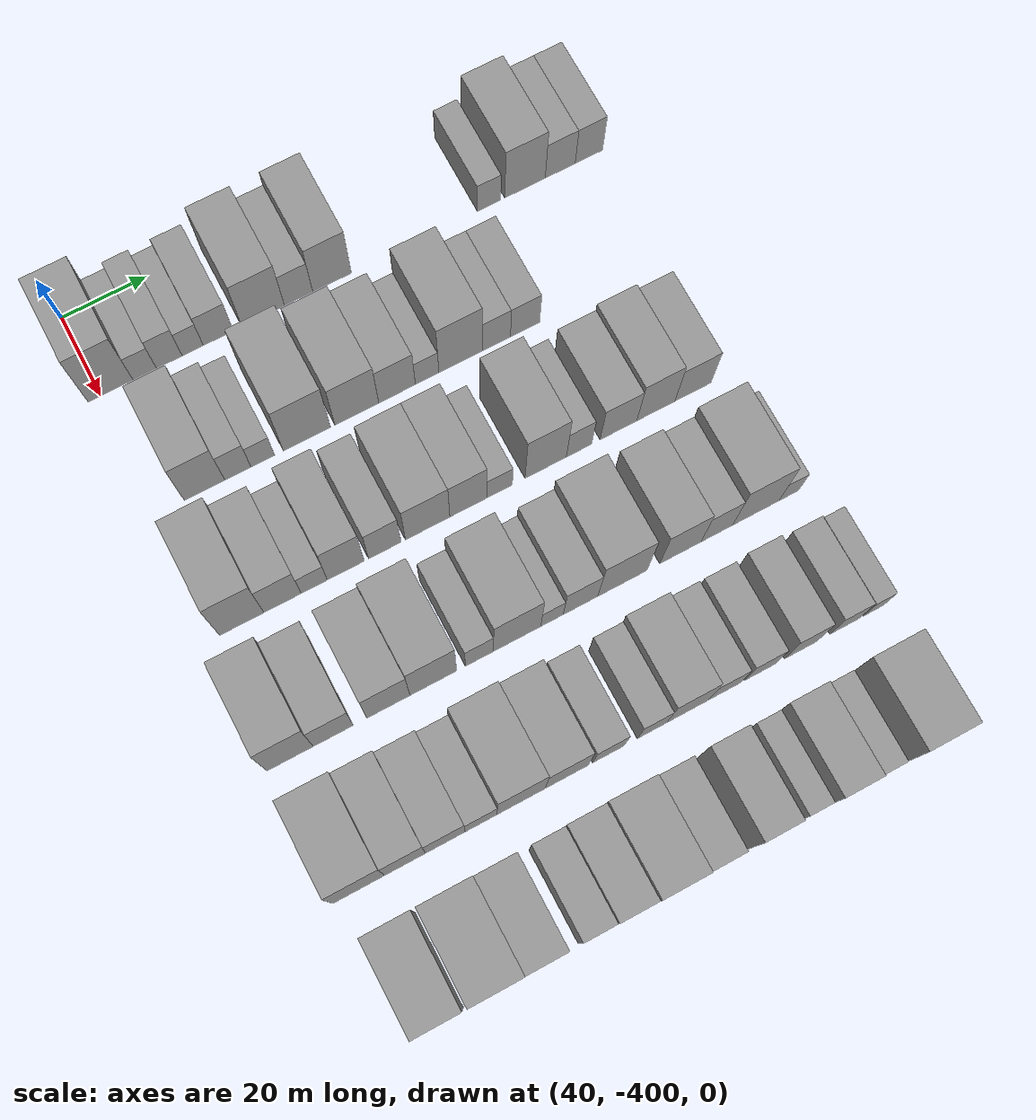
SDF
<sdf version="1.6">
 <world name="default">
  <model name="building_14">
   <static>1</static>
   <pose>50.0000 -397.6285 0 0.000000 0.000000 0.000000</pose>
   <link name="link">
    <pose>0 0 12.00 0 0 0</pose>
    <collision name="collision"><geometry><box><size>20.0000 10.4300 24.0000</size></box></geometry></collision>
    <visual name="visual">
     <cast_shadows>0</cast_shadows>
     <geometry><box><size>20.0000 10.4300 24.0000</size></box></geometry>
     <material>
      <script>
       <uri>model://grey_wall/materials/scripts</uri>
       <uri>model://grey_wall/materials/textures</uri>
       <name>vrc/grey_wall</name>
      </script>
     </material>
    </visual>
   </link>
  </model>
  <model name="building_15">
   <static>1</static>
   <pose>50.0000 -389.6784 0 0.000000 0.000000 0.000000</pose>
   <link name="link">
    <pose>0 0 6.00 0 0 0</pose>
    <collision name="collision"><geometry><box><size>20.0000 5.4701 12.0000</size></box></geometry></collision>
    <visual name="visual">
     <cast_shadows>0</cast_shadows>
     <geometry><box><size>20.0000 5.4701 12.0000</size></box></geometry>
     <material>
      <script>
       <uri>model://grey_wall/materials/scripts</uri>
       <uri>model://grey_wall/materials/textures</uri>
       <name>vrc/grey_wall</name>
      </script>
     </material>
    </visual>
   </link>
  </model>
  <model name="building_16">
   <static>1</static>
   <pose>50.0000 -383.9326 0 0.000000 0.000000 0.000000</pose>
   <link name="link">
    <pose>0 0 7.50 0 0 0</pose>
    <collision name="collision"><geometry><box><size>20.0000 6.0216 15.0000</size></box></geometry></collision>
    <visual name="visual">
     <cast_shadows>0</cast_shadows>
     <geometry><box><size>20.0000 6.0216 15.0000</size></box></geometry>
     <material>
      <script>
       <uri>model://grey_wall/materials/scripts</uri>
       <uri>model://grey_wall/materials/textures</uri>
       <name>vrc/grey_wall</name>
      </script>
     </material>
    </visual>
   </link>
  </model>
  <model name="building_17">
   <static>1</static>
   <pose>50.0000 -378.4423 0 0.000000 0.000000 0.000000</pose>
   <link name="link">
    <pose>0 0 6.00 0 0 0</pose>
    <collision name="collision"><geometry><box><size>20.0000 4.9590 12.0000</size></box></geometry></collision>
    <visual name="visual">
     <cast_shadows>0</cast_shadows>
     <geometry><box><size>20.0000 4.9590 12.0000</size></box></geometry>
     <material>
      <script>
       <uri>model://grey_wall/materials/scripts</uri>
       <uri>model://grey_wall/materials/textures</uri>
       <name>vrc/grey_wall</name>
      </script>
     </material>
    </visual>
   </link>
  </model>
  <model name="building_18">
   <static>1</static>
   <pose>50.0000 -372.4186 0 0.000000 0.000000 0.000000</pose>
   <link name="link">
    <pose>0 0 7.50 0 0 0</pose>
    <collision name="collision"><geometry><box><size>20.0000 7.0884 15.0000</size></box></geometry></collision>
    <visual name="visual">
     <cast_shadows>0</cast_shadows>
     <geometry><box><size>20.0000 7.0884 15.0000</size></box></geometry>
     <material>
      <script>
       <uri>model://grey_wall/materials/scripts</uri>
       <uri>model://grey_wall/materials/textures</uri>
       <name>vrc/grey_wall</name>
      </script>
     </material>
    </visual>
   </link>
  </model>
  <model name="building_19">
   <static>1</static>
   <pose>50.0000 -361.8042 0 0.000000 0.000000 0.000000</pose>
   <link name="link">
    <pose>0 0 10.50 0 0 0</pose>
    <collision name="collision"><geometry><box><size>20.0000 10.1404 21.0000</size></box></geometry></collision>
    <visual name="visual">
     <cast_shadows>0</cast_shadows>
     <geometry><box><size>20.0000 10.1404 21.0000</size></box></geometry>
     <material>
      <script>
       <uri>model://grey_wall/materials/scripts</uri>
       <uri>model://grey_wall/materials/textures</uri>
       <name>vrc/grey_wall</name>
      </script>
     </material>
    </visual>
   </link>
  </model>
  <model name="building_20">
   <static>1</static>
   <pose>50.0000 -353.3539 0 0.000000 0.000000 0.000000</pose>
   <link name="link">
    <pose>0 0 7.50 0 0 0</pose>
    <collision name="collision"><geometry><box><size>20.0000 6.7602 15.0000</size></box></geometry></collision>
    <visual name="visual">
     <cast_shadows>0</cast_shadows>
     <geometry><box><size>20.0000 6.7602 15.0000</size></box></geometry>
     <material>
      <script>
       <uri>model://grey_wall/materials/scripts</uri>
       <uri>model://grey_wall/materials/textures</uri>
       <name>vrc/grey_wall</name>
      </script>
     </material>
    </visual>
   </link>
  </model>
  <model name="building_21">
   <static>1</static>
   <pose>50.0000 -345.3491 0 0.000000 0.000000 0.000000</pose>
   <link name="link">
    <pose>0 0 10.50 0 0 0</pose>
    <collision name="collision"><geometry><box><size>20.0000 9.2494 21.0000</size></box></geometry></collision>
    <visual name="visual">
     <cast_shadows>0</cast_shadows>
     <geometry><box><size>20.0000 9.2494 21.0000</size></box></geometry>
     <material>
      <script>
       <uri>model://grey_wall/materials/scripts</uri>
       <uri>model://grey_wall/materials/textures</uri>
       <name>vrc/grey_wall</name>
      </script>
     </material>
    </visual>
   </link>
  </model>
  <model name="building_22">
   <static>1</static>
   <pose>50.0000 -307.1220 0 0.000000 0.000000 0.000000</pose>
   <link name="link">
    <pose>0 0 6.00 0 0 0</pose>
    <collision name="collision"><geometry><box><size>20.0000 5.7349 12.0000</size></box></geometry></collision>
    <visual name="visual">
     <cast_shadows>0</cast_shadows>
     <geometry><box><size>20.0000 5.7349 12.0000</size></box></geometry>
     <material>
      <script>
       <uri>model://grey_wall/materials/scripts</uri>
       <uri>model://grey_wall/materials/textures</uri>
       <name>vrc/grey_wall</name>
      </script>
     </material>
    </visual>
   </link>
  </model>
  <model name="building_23">
   <static>1</static>
   <pose>50.0000 -298.2257 0 0.000000 0.000000 0.000000</pose>
   <link name="link">
    <pose>0 0 10.50 0 0 0</pose>
    <collision name="collision"><geometry><box><size>20.0000 10.0577 21.0000</size></box></geometry></collision>
    <visual name="visual">
     <cast_shadows>0</cast_shadows>
     <geometry><box><size>20.0000 10.0577 21.0000</size></box></geometry>
     <material>
      <script>
       <uri>model://grey_wall/materials/scripts</uri>
       <uri>model://grey_wall/materials/textures</uri>
       <name>vrc/grey_wall</name>
      </script>
     </material>
    </visual>
   </link>
  </model>
  <model name="building_24">
   <static>1</static>
   <pose>50.0000 -289.4588 0 0.000000 0.000000 0.000000</pose>
   <link name="link">
    <pose>0 0 7.50 0 0 0</pose>
    <collision name="collision"><geometry><box><size>20.0000 7.4761 15.0000</size></box></geometry></collision>
    <visual name="visual">
     <cast_shadows>0</cast_shadows>
     <geometry><box><size>20.0000 7.4761 15.0000</size></box></geometry>
     <material>
      <script>
       <uri>model://grey_wall/materials/scripts</uri>
       <uri>model://grey_wall/materials/textures</uri>
       <name>vrc/grey_wall</name>
      </script>
     </material>
    </visual>
   </link>
  </model>
  <model name="building_25">
   <static>1</static>
   <pose>50.0000 -282.2839 0 0.000000 0.000000 0.000000</pose>
   <link name="link">
    <pose>0 0 7.50 0 0 0</pose>
    <collision name="collision"><geometry><box><size>20.0000 6.8737 15.0000</size></box></geometry></collision>
    <visual name="visual">
     <cast_shadows>0</cast_shadows>
     <geometry><box><size>20.0000 6.8737 15.0000</size></box></geometry>
     <material>
      <script>
       <uri>model://grey_wall/materials/scripts</uri>
       <uri>model://grey_wall/materials/textures</uri>
       <name>vrc/grey_wall</name>
      </script>
     </material>
    </visual>
   </link>
  </model>
  <model name="building_127">
   <static>1</static>
   <pose>79.0000 -389.4986 0 0.000000 0.000000 0.000000</pose>
   <link name="link">
    <pose>0 0 10.50 0 0 0</pose>
    <collision name="collision"><geometry><box><size>20.0000 9.3005 21.0000</size></box></geometry></collision>
    <visual name="visual">
     <cast_shadows>0</cast_shadows>
     <geometry><box><size>20.0000 9.3005 21.0000</size></box></geometry>
     <material>
      <script>
       <uri>model://grey_wall/materials/scripts</uri>
       <uri>model://grey_wall/materials/textures</uri>
       <name>vrc/grey_wall</name>
      </script>
     </material>
    </visual>
   </link>
  </model>
  <model name="building_128">
   <static>1</static>
   <pose>79.0000 -381.8173 0 0.000000 0.000000 0.000000</pose>
   <link name="link">
    <pose>0 0 7.50 0 0 0</pose>
    <collision name="collision"><geometry><box><size>20.0000 6.0622 15.0000</size></box></geometry></collision>
    <visual name="visual">
     <cast_shadows>0</cast_shadows>
     <geometry><box><size>20.0000 6.0622 15.0000</size></box></geometry>
     <material>
      <script>
       <uri>model://grey_wall/materials/scripts</uri>
       <uri>model://grey_wall/materials/textures</uri>
       <name>vrc/grey_wall</name>
      </script>
     </material>
    </visual>
   </link>
  </model>
  <model name="building_129">
   <static>1</static>
   <pose>79.0000 -376.0489 0 0.000000 0.000000 0.000000</pose>
   <link name="link">
    <pose>0 0 6.00 0 0 0</pose>
    <collision name="collision"><geometry><box><size>20.0000 5.4746 12.0000</size></box></geometry></collision>
    <visual name="visual">
     <cast_shadows>0</cast_shadows>
     <geometry><box><size>20.0000 5.4746 12.0000</size></box></geometry>
     <material>
      <script>
       <uri>model://grey_wall/materials/scripts</uri>
       <uri>model://grey_wall/materials/textures</uri>
       <name>vrc/grey_wall</name>
      </script>
     </material>
    </visual>
   </link>
  </model>
  <model name="building_130">
   <static>1</static>
   <pose>79.0000 -365.7955 0 0.000000 0.000000 0.000000</pose>
   <link name="link">
    <pose>0 0 12.00 0 0 0</pose>
    <collision name="collision"><geometry><box><size>20.0000 11.0322 24.0000</size></box></geometry></collision>
    <visual name="visual">
     <cast_shadows>0</cast_shadows>
     <geometry><box><size>20.0000 11.0322 24.0000</size></box></geometry>
     <material>
      <script>
       <uri>model://grey_wall/materials/scripts</uri>
       <uri>model://grey_wall/materials/textures</uri>
       <name>vrc/grey_wall</name>
      </script>
     </material>
    </visual>
   </link>
  </model>
  <model name="building_131">
   <static>1</static>
   <pose>79.0000 -354.1145 0 0.000000 0.000000 0.000000</pose>
   <link name="link">
    <pose>0 0 10.50 0 0 0</pose>
    <collision name="collision"><geometry><box><size>20.0000 10.3298 21.0000</size></box></geometry></collision>
    <visual name="visual">
     <cast_shadows>0</cast_shadows>
     <geometry><box><size>20.0000 10.3298 21.0000</size></box></geometry>
     <material>
      <script>
       <uri>model://grey_wall/materials/scripts</uri>
       <uri>model://grey_wall/materials/textures</uri>
       <name>vrc/grey_wall</name>
      </script>
     </material>
    </visual>
   </link>
  </model>
  <model name="building_132">
   <static>1</static>
   <pose>79.0000 -344.5985 0 0.000000 0.000000 0.000000</pose>
   <link name="link">
    <pose>0 0 9.00 0 0 0</pose>
    <collision name="collision"><geometry><box><size>20.0000 8.7021 18.0000</size></box></geometry></collision>
    <visual name="visual">
     <cast_shadows>0</cast_shadows>
     <geometry><box><size>20.0000 8.7021 18.0000</size></box></geometry>
     <material>
      <script>
       <uri>model://grey_wall/materials/scripts</uri>
       <uri>model://grey_wall/materials/textures</uri>
       <name>vrc/grey_wall</name>
      </script>
     </material>
    </visual>
   </link>
  </model>
  <model name="building_133">
   <static>1</static>
   <pose>79.0000 -337.4451 0 0.000000 0.000000 0.000000</pose>
   <link name="link">
    <pose>0 0 6.00 0 0 0</pose>
    <collision name="collision"><geometry><box><size>20.0000 5.6048 12.0000</size></box></geometry></collision>
    <visual name="visual">
     <cast_shadows>0</cast_shadows>
     <geometry><box><size>20.0000 5.6048 12.0000</size></box></geometry>
     <material>
      <script>
       <uri>model://grey_wall/materials/scripts</uri>
       <uri>model://grey_wall/materials/textures</uri>
       <name>vrc/grey_wall</name>
      </script>
     </material>
    </visual>
   </link>
  </model>
  <model name="building_134">
   <static>1</static>
   <pose>79.0000 -329.4252 0 0.000000 0.000000 0.000000</pose>
   <link name="link">
    <pose>0 0 12.00 0 0 0</pose>
    <collision name="collision"><geometry><box><size>20.0000 10.4351 24.0000</size></box></geometry></collision>
    <visual name="visual">
     <cast_shadows>0</cast_shadows>
     <geometry><box><size>20.0000 10.4351 24.0000</size></box></geometry>
     <material>
      <script>
       <uri>model://grey_wall/materials/scripts</uri>
       <uri>model://grey_wall/materials/textures</uri>
       <name>vrc/grey_wall</name>
      </script>
     </material>
    </visual>
   </link>
  </model>
  <model name="building_135">
   <static>1</static>
   <pose>79.0000 -320.8374 0 0.000000 0.000000 0.000000</pose>
   <link name="link">
    <pose>0 0 7.50 0 0 0</pose>
    <collision name="collision"><geometry><box><size>20.0000 6.7405 15.0000</size></box></geometry></collision>
    <visual name="visual">
     <cast_shadows>0</cast_shadows>
     <geometry><box><size>20.0000 6.7405 15.0000</size></box></geometry>
     <material>
      <script>
       <uri>model://grey_wall/materials/scripts</uri>
       <uri>model://grey_wall/materials/textures</uri>
       <name>vrc/grey_wall</name>
      </script>
     </material>
    </visual>
   </link>
  </model>
  <model name="building_136">
   <static>1</static>
   <pose>79.0000 -313.9350 0 0.000000 0.000000 0.000000</pose>
   <link name="link">
    <pose>0 0 7.50 0 0 0</pose>
    <collision name="collision"><geometry><box><size>20.0000 7.0644 15.0000</size></box></geometry></collision>
    <visual name="visual">
     <cast_shadows>0</cast_shadows>
     <geometry><box><size>20.0000 7.0644 15.0000</size></box></geometry>
     <material>
      <script>
       <uri>model://grey_wall/materials/scripts</uri>
       <uri>model://grey_wall/materials/textures</uri>
       <name>vrc/grey_wall</name>
      </script>
     </material>
    </visual>
   </link>
  </model>
  <model name="building_242">
   <static>1</static>
   <pose>108.0000 -394.9844 0 0.000000 0.000000 0.000000</pose>
   <link name="link">
    <pose>0 0 12.00 0 0 0</pose>
    <collision name="collision"><geometry><box><size>20.0000 10.0059 24.0000</size></box></geometry></collision>
    <visual name="visual">
     <cast_shadows>0</cast_shadows>
     <geometry><box><size>20.0000 10.0059 24.0000</size></box></geometry>
     <material>
      <script>
       <uri>model://grey_wall/materials/scripts</uri>
       <uri>model://grey_wall/materials/textures</uri>
       <name>vrc/grey_wall</name>
      </script>
     </material>
    </visual>
   </link>
  </model>
  <model name="building_243">
   <static>1</static>
   <pose>108.0000 -385.7614 0 0.000000 0.000000 0.000000</pose>
   <link name="link">
    <pose>0 0 9.00 0 0 0</pose>
    <collision name="collision"><geometry><box><size>20.0000 8.4400 18.0000</size></box></geometry></collision>
    <visual name="visual">
     <cast_shadows>0</cast_shadows>
     <geometry><box><size>20.0000 8.4400 18.0000</size></box></geometry>
     <material>
      <script>
       <uri>model://grey_wall/materials/scripts</uri>
       <uri>model://grey_wall/materials/textures</uri>
       <name>vrc/grey_wall</name>
      </script>
     </material>
    </visual>
   </link>
  </model>
  <model name="building_244">
   <static>1</static>
   <pose>108.0000 -378.5635 0 0.000000 0.000000 0.000000</pose>
   <link name="link">
    <pose>0 0 6.00 0 0 0</pose>
    <collision name="collision"><geometry><box><size>20.0000 5.9558 12.0000</size></box></geometry></collision>
    <visual name="visual">
     <cast_shadows>0</cast_shadows>
     <geometry><box><size>20.0000 5.9558 12.0000</size></box></geometry>
     <material>
      <script>
       <uri>model://grey_wall/materials/scripts</uri>
       <uri>model://grey_wall/materials/textures</uri>
       <name>vrc/grey_wall</name>
      </script>
     </material>
    </visual>
   </link>
  </model>
  <model name="building_245">
   <static>1</static>
   <pose>108.0000 -371.3478 0 0.000000 0.000000 0.000000</pose>
   <link name="link">
    <pose>0 0 10.50 0 0 0</pose>
    <collision name="collision"><geometry><box><size>20.0000 8.4756 21.0000</size></box></geometry></collision>
    <visual name="visual">
     <cast_shadows>0</cast_shadows>
     <geometry><box><size>20.0000 8.4756 21.0000</size></box></geometry>
     <material>
      <script>
       <uri>model://grey_wall/materials/scripts</uri>
       <uri>model://grey_wall/materials/textures</uri>
       <name>vrc/grey_wall</name>
      </script>
     </material>
    </visual>
   </link>
  </model>
  <model name="building_246">
   <static>1</static>
   <pose>108.0000 -362.3578 0 0.000000 0.000000 0.000000</pose>
   <link name="link">
    <pose>0 0 9.00 0 0 0</pose>
    <collision name="collision"><geometry><box><size>20.0000 7.5045 18.0000</size></box></geometry></collision>
    <visual name="visual">
     <cast_shadows>0</cast_shadows>
     <geometry><box><size>20.0000 7.5045 18.0000</size></box></geometry>
     <material>
      <script>
       <uri>model://grey_wall/materials/scripts</uri>
       <uri>model://grey_wall/materials/textures</uri>
       <name>vrc/grey_wall</name>
      </script>
     </material>
    </visual>
   </link>
  </model>
  <model name="building_247">
   <static>1</static>
   <pose>108.0000 -352.4437 0 0.000000 0.000000 0.000000</pose>
   <link name="link">
    <pose>0 0 10.50 0 0 0</pose>
    <collision name="collision"><geometry><box><size>20.0000 10.3237 21.0000</size></box></geometry></collision>
    <visual name="visual">
     <cast_shadows>0</cast_shadows>
     <geometry><box><size>20.0000 10.3237 21.0000</size></box></geometry>
     <material>
      <script>
       <uri>model://grey_wall/materials/scripts</uri>
       <uri>model://grey_wall/materials/textures</uri>
       <name>vrc/grey_wall</name>
      </script>
     </material>
    </visual>
   </link>
  </model>
  <model name="building_248">
   <static>1</static>
   <pose>108.0000 -342.9210 0 0.000000 0.000000 0.000000</pose>
   <link name="link">
    <pose>0 0 10.50 0 0 0</pose>
    <collision name="collision"><geometry><box><size>20.0000 8.7217 21.0000</size></box></geometry></collision>
    <visual name="visual">
     <cast_shadows>0</cast_shadows>
     <geometry><box><size>20.0000 8.7217 21.0000</size></box></geometry>
     <material>
      <script>
       <uri>model://grey_wall/materials/scripts</uri>
       <uri>model://grey_wall/materials/textures</uri>
       <name>vrc/grey_wall</name>
      </script>
     </material>
    </visual>
   </link>
  </model>
  <model name="building_249">
   <static>1</static>
   <pose>108.0000 -335.6010 0 0.000000 0.000000 0.000000</pose>
   <link name="link">
    <pose>0 0 6.00 0 0 0</pose>
    <collision name="collision"><geometry><box><size>20.0000 5.9183 12.0000</size></box></geometry></collision>
    <visual name="visual">
     <cast_shadows>0</cast_shadows>
     <geometry><box><size>20.0000 5.9183 12.0000</size></box></geometry>
     <material>
      <script>
       <uri>model://grey_wall/materials/scripts</uri>
       <uri>model://grey_wall/materials/textures</uri>
       <name>vrc/grey_wall</name>
      </script>
     </material>
    </visual>
   </link>
  </model>
  <model name="building_250">
   <static>1</static>
   <pose>108.0000 -324.7486 0 0.000000 0.000000 0.000000</pose>
   <link name="link">
    <pose>0 0 12.00 0 0 0</pose>
    <collision name="collision"><geometry><box><size>20.0000 9.7865 24.0000</size></box></geometry></collision>
    <visual name="visual">
     <cast_shadows>0</cast_shadows>
     <geometry><box><size>20.0000 9.7865 24.0000</size></box></geometry>
     <material>
      <script>
       <uri>model://grey_wall/materials/scripts</uri>
       <uri>model://grey_wall/materials/textures</uri>
       <name>vrc/grey_wall</name>
      </script>
     </material>
    </visual>
   </link>
  </model>
  <model name="building_251">
   <static>1</static>
   <pose>108.0000 -316.8210 0 0.000000 0.000000 0.000000</pose>
   <link name="link">
    <pose>0 0 7.50 0 0 0</pose>
    <collision name="collision"><geometry><box><size>20.0000 6.0687 15.0000</size></box></geometry></collision>
    <visual name="visual">
     <cast_shadows>0</cast_shadows>
     <geometry><box><size>20.0000 6.0687 15.0000</size></box></geometry>
     <material>
      <script>
       <uri>model://grey_wall/materials/scripts</uri>
       <uri>model://grey_wall/materials/textures</uri>
       <name>vrc/grey_wall</name>
      </script>
     </material>
    </visual>
   </link>
  </model>
  <model name="building_252">
   <static>1</static>
   <pose>108.0000 -307.3789 0 0.000000 0.000000 0.000000</pose>
   <link name="link">
    <pose>0 0 9.00 0 0 0</pose>
    <collision name="collision"><geometry><box><size>20.0000 8.8155 18.0000</size></box></geometry></collision>
    <visual name="visual">
     <cast_shadows>0</cast_shadows>
     <geometry><box><size>20.0000 8.8155 18.0000</size></box></geometry>
     <material>
      <script>
       <uri>model://grey_wall/materials/scripts</uri>
       <uri>model://grey_wall/materials/textures</uri>
       <name>vrc/grey_wall</name>
      </script>
     </material>
    </visual>
   </link>
  </model>
  <model name="building_253">
   <static>1</static>
   <pose>108.0000 -298.3660 0 0.000000 0.000000 0.000000</pose>
   <link name="link">
    <pose>0 0 10.50 0 0 0</pose>
    <collision name="collision"><geometry><box><size>20.0000 9.2102 21.0000</size></box></geometry></collision>
    <visual name="visual">
     <cast_shadows>0</cast_shadows>
     <geometry><box><size>20.0000 9.2102 21.0000</size></box></geometry>
     <material>
      <script>
       <uri>model://grey_wall/materials/scripts</uri>
       <uri>model://grey_wall/materials/textures</uri>
       <name>vrc/grey_wall</name>
      </script>
     </material>
    </visual>
   </link>
  </model>
  <model name="building_254">
   <static>1</static>
   <pose>108.0000 -289.3738 0 0.000000 0.000000 0.000000</pose>
   <link name="link">
    <pose>0 0 9.00 0 0 0</pose>
    <collision name="collision"><geometry><box><size>20.0000 8.7741 18.0000</size></box></geometry></collision>
    <visual name="visual">
     <cast_shadows>0</cast_shadows>
     <geometry><box><size>20.0000 8.7741 18.0000</size></box></geometry>
     <material>
      <script>
       <uri>model://grey_wall/materials/scripts</uri>
       <uri>model://grey_wall/materials/textures</uri>
       <name>vrc/grey_wall</name>
      </script>
     </material>
    </visual>
   </link>
  </model>
  <model name="building_351">
   <static>1</static>
   <pose>137.0000 -398.3621 0 0.000000 0.000000 0.000000</pose>
   <link name="link">
    <pose>0 0 12.00 0 0 0</pose>
    <collision name="collision"><geometry><box><size>20.0000 10.2706 24.0000</size></box></geometry></collision>
    <visual name="visual">
     <cast_shadows>0</cast_shadows>
     <geometry><box><size>20.0000 10.2706 24.0000</size></box></geometry>
     <material>
      <script>
       <uri>model://grey_wall/materials/scripts</uri>
       <uri>model://grey_wall/materials/textures</uri>
       <name>vrc/grey_wall</name>
      </script>
     </material>
    </visual>
   </link>
  </model>
  <model name="building_352">
   <static>1</static>
   <pose>137.0000 -388.7688 0 0.000000 0.000000 0.000000</pose>
   <link name="link">
    <pose>0 0 9.00 0 0 0</pose>
    <collision name="collision"><geometry><box><size>20.0000 8.9160 18.0000</size></box></geometry></collision>
    <visual name="visual">
     <cast_shadows>0</cast_shadows>
     <geometry><box><size>20.0000 8.9160 18.0000</size></box></geometry>
     <material>
      <script>
       <uri>model://grey_wall/materials/scripts</uri>
       <uri>model://grey_wall/materials/textures</uri>
       <name>vrc/grey_wall</name>
      </script>
     </material>
    </visual>
   </link>
  </model>
  <model name="building_353">
   <static>1</static>
   <pose>137.0000 -376.4501 0 0.000000 0.000000 0.000000</pose>
   <link name="link">
    <pose>0 0 10.50 0 0 0</pose>
    <collision name="collision"><geometry><box><size>20.0000 9.7214 21.0000</size></box></geometry></collision>
    <visual name="visual">
     <cast_shadows>0</cast_shadows>
     <geometry><box><size>20.0000 9.7214 21.0000</size></box></geometry>
     <material>
      <script>
       <uri>model://grey_wall/materials/scripts</uri>
       <uri>model://grey_wall/materials/textures</uri>
       <name>vrc/grey_wall</name>
      </script>
     </material>
    </visual>
   </link>
  </model>
  <model name="building_354">
   <static>1</static>
   <pose>137.0000 -366.2980 0 0.000000 0.000000 0.000000</pose>
   <link name="link">
    <pose>0 0 12.00 0 0 0</pose>
    <collision name="collision"><geometry><box><size>20.0000 10.5828 24.0000</size></box></geometry></collision>
    <visual name="visual">
     <cast_shadows>0</cast_shadows>
     <geometry><box><size>20.0000 10.5828 24.0000</size></box></geometry>
     <material>
      <script>
       <uri>model://grey_wall/materials/scripts</uri>
       <uri>model://grey_wall/materials/textures</uri>
       <name>vrc/grey_wall</name>
      </script>
     </material>
    </visual>
   </link>
  </model>
  <model name="building_355">
   <static>1</static>
   <pose>137.0000 -355.8295 0 0.000000 0.000000 0.000000</pose>
   <link name="link">
    <pose>0 0 7.50 0 0 0</pose>
    <collision name="collision"><geometry><box><size>20.0000 6.3542 15.0000</size></box></geometry></collision>
    <visual name="visual">
     <cast_shadows>0</cast_shadows>
     <geometry><box><size>20.0000 6.3542 15.0000</size></box></geometry>
     <material>
      <script>
       <uri>model://grey_wall/materials/scripts</uri>
       <uri>model://grey_wall/materials/textures</uri>
       <name>vrc/grey_wall</name>
      </script>
     </material>
    </visual>
   </link>
  </model>
  <model name="building_356">
   <static>1</static>
   <pose>137.0000 -347.2038 0 0.000000 0.000000 0.000000</pose>
   <link name="link">
    <pose>0 0 12.00 0 0 0</pose>
    <collision name="collision"><geometry><box><size>20.0000 10.8970 24.0000</size></box></geometry></collision>
    <visual name="visual">
     <cast_shadows>0</cast_shadows>
     <geometry><box><size>20.0000 10.8970 24.0000</size></box></geometry>
     <material>
      <script>
       <uri>model://grey_wall/materials/scripts</uri>
       <uri>model://grey_wall/materials/textures</uri>
       <name>vrc/grey_wall</name>
      </script>
     </material>
    </visual>
   </link>
  </model>
  <model name="building_357">
   <static>1</static>
   <pose>137.0000 -339.1524 0 0.000000 0.000000 0.000000</pose>
   <link name="link">
    <pose>0 0 6.00 0 0 0</pose>
    <collision name="collision"><geometry><box><size>20.0000 5.2058 12.0000</size></box></geometry></collision>
    <visual name="visual">
     <cast_shadows>0</cast_shadows>
     <geometry><box><size>20.0000 5.2058 12.0000</size></box></geometry>
     <material>
      <script>
       <uri>model://grey_wall/materials/scripts</uri>
       <uri>model://grey_wall/materials/textures</uri>
       <name>vrc/grey_wall</name>
      </script>
     </material>
    </visual>
   </link>
  </model>
  <model name="building_358">
   <static>1</static>
   <pose>137.0000 -332.5166 0 0.000000 0.000000 0.000000</pose>
   <link name="link">
    <pose>0 0 9.00 0 0 0</pose>
    <collision name="collision"><geometry><box><size>20.0000 8.0657 18.0000</size></box></geometry></collision>
    <visual name="visual">
     <cast_shadows>0</cast_shadows>
     <geometry><box><size>20.0000 8.0657 18.0000</size></box></geometry>
     <material>
      <script>
       <uri>model://grey_wall/materials/scripts</uri>
       <uri>model://grey_wall/materials/textures</uri>
       <name>vrc/grey_wall</name>
      </script>
     </material>
    </visual>
   </link>
  </model>
  <model name="building_359">
   <static>1</static>
   <pose>137.0000 -322.7128 0 0.000000 0.000000 0.000000</pose>
   <link name="link">
    <pose>0 0 12.00 0 0 0</pose>
    <collision name="collision"><geometry><box><size>20.0000 11.5420 24.0000</size></box></geometry></collision>
    <visual name="visual">
     <cast_shadows>0</cast_shadows>
     <geometry><box><size>20.0000 11.5420 24.0000</size></box></geometry>
     <material>
      <script>
       <uri>model://grey_wall/materials/scripts</uri>
       <uri>model://grey_wall/materials/textures</uri>
       <name>vrc/grey_wall</name>
      </script>
     </material>
    </visual>
   </link>
  </model>
  <model name="building_360">
   <static>1</static>
   <pose>137.0000 -309.0720 0 0.000000 0.000000 0.000000</pose>
   <link name="link">
    <pose>0 0 10.50 0 0 0</pose>
    <collision name="collision"><geometry><box><size>20.0000 9.7395 21.0000</size></box></geometry></collision>
    <visual name="visual">
     <cast_shadows>0</cast_shadows>
     <geometry><box><size>20.0000 9.7395 21.0000</size></box></geometry>
     <material>
      <script>
       <uri>model://grey_wall/materials/scripts</uri>
       <uri>model://grey_wall/materials/textures</uri>
       <name>vrc/grey_wall</name>
      </script>
     </material>
    </visual>
   </link>
  </model>
  <model name="building_361">
   <static>1</static>
   <pose>137.0000 -300.4558 0 0.000000 0.000000 0.000000</pose>
   <link name="link">
    <pose>0 0 9.00 0 0 0</pose>
    <collision name="collision"><geometry><box><size>20.0000 7.4928 18.0000</size></box></geometry></collision>
    <visual name="visual">
     <cast_shadows>0</cast_shadows>
     <geometry><box><size>20.0000 7.4928 18.0000</size></box></geometry>
     <material>
      <script>
       <uri>model://grey_wall/materials/scripts</uri>
       <uri>model://grey_wall/materials/textures</uri>
       <name>vrc/grey_wall</name>
      </script>
     </material>
    </visual>
   </link>
  </model>
  <model name="building_362">
   <static>1</static>
   <pose>137.0000 -291.1329 0 0.000000 0.000000 0.000000</pose>
   <link name="link">
    <pose>0 0 12.00 0 0 0</pose>
    <collision name="collision"><geometry><box><size>20.0000 11.1530 24.0000</size></box></geometry></collision>
    <visual name="visual">
     <cast_shadows>0</cast_shadows>
     <geometry><box><size>20.0000 11.1530 24.0000</size></box></geometry>
     <material>
      <script>
       <uri>model://grey_wall/materials/scripts</uri>
       <uri>model://grey_wall/materials/textures</uri>
       <name>vrc/grey_wall</name>
      </script>
     </material>
    </visual>
   </link>
  </model>
  <model name="building_363">
   <static>1</static>
   <pose>137.0000 -283.1540 0 0.000000 0.000000 0.000000</pose>
   <link name="link">
    <pose>0 0 6.00 0 0 0</pose>
    <collision name="collision"><geometry><box><size>20.0000 4.8050 12.0000</size></box></geometry></collision>
    <visual name="visual">
     <cast_shadows>0</cast_shadows>
     <geometry><box><size>20.0000 4.8050 12.0000</size></box></geometry>
     <material>
      <script>
       <uri>model://grey_wall/materials/scripts</uri>
       <uri>model://grey_wall/materials/textures</uri>
       <name>vrc/grey_wall</name>
      </script>
     </material>
    </visual>
   </link>
  </model>
  <model name="building_466">
   <static>1</static>
   <pose>166.0000 -397.7326 0 0.000000 0.000000 0.000000</pose>
   <link name="link">
    <pose>0 0 12.00 0 0 0</pose>
    <collision name="collision"><geometry><box><size>20.0000 11.2969 24.0000</size></box></geometry></collision>
    <visual name="visual">
     <cast_shadows>0</cast_shadows>
     <geometry><box><size>20.0000 11.2969 24.0000</size></box></geometry>
     <material>
      <script>
       <uri>model://grey_wall/materials/scripts</uri>
       <uri>model://grey_wall/materials/textures</uri>
       <name>vrc/grey_wall</name>
      </script>
     </material>
    </visual>
   </link>
  </model>
  <model name="building_467">
   <static>1</static>
   <pose>166.0000 -387.6231 0 0.000000 0.000000 0.000000</pose>
   <link name="link">
    <pose>0 0 10.50 0 0 0</pose>
    <collision name="collision"><geometry><box><size>20.0000 8.9222 21.0000</size></box></geometry></collision>
    <visual name="visual">
     <cast_shadows>0</cast_shadows>
     <geometry><box><size>20.0000 8.9222 21.0000</size></box></geometry>
     <material>
      <script>
       <uri>model://grey_wall/materials/scripts</uri>
       <uri>model://grey_wall/materials/textures</uri>
       <name>vrc/grey_wall</name>
      </script>
     </material>
    </visual>
   </link>
  </model>
  <model name="building_468">
   <static>1</static>
   <pose>166.0000 -378.7931 0 0.000000 0.000000 0.000000</pose>
   <link name="link">
    <pose>0 0 9.00 0 0 0</pose>
    <collision name="collision"><geometry><box><size>20.0000 8.7379 18.0000</size></box></geometry></collision>
    <visual name="visual">
     <cast_shadows>0</cast_shadows>
     <geometry><box><size>20.0000 8.7379 18.0000</size></box></geometry>
     <material>
      <script>
       <uri>model://grey_wall/materials/scripts</uri>
       <uri>model://grey_wall/materials/textures</uri>
       <name>vrc/grey_wall</name>
      </script>
     </material>
    </visual>
   </link>
  </model>
  <model name="building_469">
   <static>1</static>
   <pose>166.0000 -370.8876 0 0.000000 0.000000 0.000000</pose>
   <link name="link">
    <pose>0 0 7.50 0 0 0</pose>
    <collision name="collision"><geometry><box><size>20.0000 7.0731 15.0000</size></box></geometry></collision>
    <visual name="visual">
     <cast_shadows>0</cast_shadows>
     <geometry><box><size>20.0000 7.0731 15.0000</size></box></geometry>
     <material>
      <script>
       <uri>model://grey_wall/materials/scripts</uri>
       <uri>model://grey_wall/materials/textures</uri>
       <name>vrc/grey_wall</name>
      </script>
     </material>
    </visual>
   </link>
  </model>
  <model name="building_470">
   <static>1</static>
   <pose>166.0000 -361.9416 0 0.000000 0.000000 0.000000</pose>
   <link name="link">
    <pose>0 0 12.00 0 0 0</pose>
    <collision name="collision"><geometry><box><size>20.0000 10.8190 24.0000</size></box></geometry></collision>
    <visual name="visual">
     <cast_shadows>0</cast_shadows>
     <geometry><box><size>20.0000 10.8190 24.0000</size></box></geometry>
     <material>
      <script>
       <uri>model://grey_wall/materials/scripts</uri>
       <uri>model://grey_wall/materials/textures</uri>
       <name>vrc/grey_wall</name>
      </script>
     </material>
    </visual>
   </link>
  </model>
  <model name="building_471">
   <static>1</static>
   <pose>166.0000 -351.6394 0 0.000000 0.000000 0.000000</pose>
   <link name="link">
    <pose>0 0 10.50 0 0 0</pose>
    <collision name="collision"><geometry><box><size>20.0000 9.7853 21.0000</size></box></geometry></collision>
    <visual name="visual">
     <cast_shadows>0</cast_shadows>
     <geometry><box><size>20.0000 9.7853 21.0000</size></box></geometry>
     <material>
      <script>
       <uri>model://grey_wall/materials/scripts</uri>
       <uri>model://grey_wall/materials/textures</uri>
       <name>vrc/grey_wall</name>
      </script>
     </material>
    </visual>
   </link>
  </model>
  <model name="building_472">
   <static>1</static>
   <pose>166.0000 -342.1630 0 0.000000 0.000000 0.000000</pose>
   <link name="link">
    <pose>0 0 7.50 0 0 0</pose>
    <collision name="collision"><geometry><box><size>20.0000 7.1676 15.0000</size></box></geometry></collision>
    <visual name="visual">
     <cast_shadows>0</cast_shadows>
     <geometry><box><size>20.0000 7.1676 15.0000</size></box></geometry>
     <material>
      <script>
       <uri>model://grey_wall/materials/scripts</uri>
       <uri>model://grey_wall/materials/textures</uri>
       <name>vrc/grey_wall</name>
      </script>
     </material>
    </visual>
   </link>
  </model>
  <model name="building_473">
   <static>1</static>
   <pose>166.0000 -332.2569 0 0.000000 0.000000 0.000000</pose>
   <link name="link">
    <pose>0 0 7.50 0 0 0</pose>
    <collision name="collision"><geometry><box><size>20.0000 6.6446 15.0000</size></box></geometry></collision>
    <visual name="visual">
     <cast_shadows>0</cast_shadows>
     <geometry><box><size>20.0000 6.6446 15.0000</size></box></geometry>
     <material>
      <script>
       <uri>model://grey_wall/materials/scripts</uri>
       <uri>model://grey_wall/materials/textures</uri>
       <name>vrc/grey_wall</name>
      </script>
     </material>
    </visual>
   </link>
  </model>
  <model name="building_474">
   <static>1</static>
   <pose>166.0000 -324.0570 0 0.000000 0.000000 0.000000</pose>
   <link name="link">
    <pose>0 0 10.50 0 0 0</pose>
    <collision name="collision"><geometry><box><size>20.0000 9.7551 21.0000</size></box></geometry></collision>
    <visual name="visual">
     <cast_shadows>0</cast_shadows>
     <geometry><box><size>20.0000 9.7551 21.0000</size></box></geometry>
     <material>
      <script>
       <uri>model://grey_wall/materials/scripts</uri>
       <uri>model://grey_wall/materials/textures</uri>
       <name>vrc/grey_wall</name>
      </script>
     </material>
    </visual>
   </link>
  </model>
  <model name="building_475">
   <static>1</static>
   <pose>166.0000 -315.4754 0 0.000000 0.000000 0.000000</pose>
   <link name="link">
    <pose>0 0 7.50 0 0 0</pose>
    <collision name="collision"><geometry><box><size>20.0000 7.4081 15.0000</size></box></geometry></collision>
    <visual name="visual">
     <cast_shadows>0</cast_shadows>
     <geometry><box><size>20.0000 7.4081 15.0000</size></box></geometry>
     <material>
      <script>
       <uri>model://grey_wall/materials/scripts</uri>
       <uri>model://grey_wall/materials/textures</uri>
       <name>vrc/grey_wall</name>
      </script>
     </material>
    </visual>
   </link>
  </model>
  <model name="building_476">
   <static>1</static>
   <pose>166.0000 -307.1188 0 0.000000 0.000000 0.000000</pose>
   <link name="link">
    <pose>0 0 7.50 0 0 0</pose>
    <collision name="collision"><geometry><box><size>20.0000 7.3052 15.0000</size></box></geometry></collision>
    <visual name="visual">
     <cast_shadows>0</cast_shadows>
     <geometry><box><size>20.0000 7.3052 15.0000</size></box></geometry>
     <material>
      <script>
       <uri>model://grey_wall/materials/scripts</uri>
       <uri>model://grey_wall/materials/textures</uri>
       <name>vrc/grey_wall</name>
      </script>
     </material>
    </visual>
   </link>
  </model>
  <model name="building_477">
   <static>1</static>
   <pose>166.0000 -297.6002 0 0.000000 0.000000 0.000000</pose>
   <link name="link">
    <pose>0 0 9.00 0 0 0</pose>
    <collision name="collision"><geometry><box><size>20.0000 7.7319 18.0000</size></box></geometry></collision>
    <visual name="visual">
     <cast_shadows>0</cast_shadows>
     <geometry><box><size>20.0000 7.7319 18.0000</size></box></geometry>
     <material>
      <script>
       <uri>model://grey_wall/materials/scripts</uri>
       <uri>model://grey_wall/materials/textures</uri>
       <name>vrc/grey_wall</name>
      </script>
     </material>
    </visual>
   </link>
  </model>
  <model name="building_478">
   <static>1</static>
   <pose>166.0000 -287.2691 0 0.000000 0.000000 0.000000</pose>
   <link name="link">
    <pose>0 0 7.50 0 0 0</pose>
    <collision name="collision"><geometry><box><size>20.0000 6.9304 15.0000</size></box></geometry></collision>
    <visual name="visual">
     <cast_shadows>0</cast_shadows>
     <geometry><box><size>20.0000 6.9304 15.0000</size></box></geometry>
     <material>
      <script>
       <uri>model://grey_wall/materials/scripts</uri>
       <uri>model://grey_wall/materials/textures</uri>
       <name>vrc/grey_wall</name>
      </script>
     </material>
    </visual>
   </link>
  </model>
  <model name="building_479">
   <static>1</static>
   <pose>166.0000 -280.3975 0 0.000000 0.000000 0.000000</pose>
   <link name="link">
    <pose>0 0 6.00 0 0 0</pose>
    <collision name="collision"><geometry><box><size>20.0000 4.8127 12.0000</size></box></geometry></collision>
    <visual name="visual">
     <cast_shadows>0</cast_shadows>
     <geometry><box><size>20.0000 4.8127 12.0000</size></box></geometry>
     <material>
      <script>
       <uri>model://grey_wall/materials/scripts</uri>
       <uri>model://grey_wall/materials/textures</uri>
       <name>vrc/grey_wall</name>
      </script>
     </material>
    </visual>
   </link>
  </model>
  <model name="building_578">
   <static>1</static>
   <pose>195.0000 -395.3873 0 0.000000 0.000000 0.000000</pose>
   <link name="link">
    <pose>0 0 12.00 0 0 0</pose>
    <collision name="collision"><geometry><box><size>20.0000 10.5521 24.0000</size></box></geometry></collision>
    <visual name="visual">
     <cast_shadows>0</cast_shadows>
     <geometry><box><size>20.0000 10.5521 24.0000</size></box></geometry>
     <material>
      <script>
       <uri>model://grey_wall/materials/scripts</uri>
       <uri>model://grey_wall/materials/textures</uri>
       <name>vrc/grey_wall</name>
      </script>
     </material>
    </visual>
   </link>
  </model>
  <model name="building_579">
   <static>1</static>
   <pose>195.0000 -383.2135 0 0.000000 0.000000 0.000000</pose>
   <link name="link">
    <pose>0 0 12.00 0 0 0</pose>
    <collision name="collision"><geometry><box><size>20.0000 11.7954 24.0000</size></box></geometry></collision>
    <visual name="visual">
     <cast_shadows>0</cast_shadows>
     <geometry><box><size>20.0000 11.7954 24.0000</size></box></geometry>
     <material>
      <script>
       <uri>model://grey_wall/materials/scripts</uri>
       <uri>model://grey_wall/materials/textures</uri>
       <name>vrc/grey_wall</name>
      </script>
     </material>
    </visual>
   </link>
  </model>
  <model name="building_580">
   <static>1</static>
   <pose>195.0000 -372.6923 0 0.000000 0.000000 0.000000</pose>
   <link name="link">
    <pose>0 0 10.50 0 0 0</pose>
    <collision name="collision"><geometry><box><size>20.0000 9.2471 21.0000</size></box></geometry></collision>
    <visual name="visual">
     <cast_shadows>0</cast_shadows>
     <geometry><box><size>20.0000 9.2471 21.0000</size></box></geometry>
     <material>
      <script>
       <uri>model://grey_wall/materials/scripts</uri>
       <uri>model://grey_wall/materials/textures</uri>
       <name>vrc/grey_wall</name>
      </script>
     </material>
    </visual>
   </link>
  </model>
  <model name="building_581">
   <static>1</static>
   <pose>195.0000 -361.3921 0 0.000000 0.000000 0.000000</pose>
   <link name="link">
    <pose>0 0 9.00 0 0 0</pose>
    <collision name="collision"><geometry><box><size>20.0000 7.3532 18.0000</size></box></geometry></collision>
    <visual name="visual">
     <cast_shadows>0</cast_shadows>
     <geometry><box><size>20.0000 7.3532 18.0000</size></box></geometry>
     <material>
      <script>
       <uri>model://grey_wall/materials/scripts</uri>
       <uri>model://grey_wall/materials/textures</uri>
       <name>vrc/grey_wall</name>
      </script>
     </material>
    </visual>
   </link>
  </model>
  <model name="building_582">
   <static>1</static>
   <pose>195.0000 -353.4499 0 0.000000 0.000000 0.000000</pose>
   <link name="link">
    <pose>0 0 10.50 0 0 0</pose>
    <collision name="collision"><geometry><box><size>20.0000 8.5313 21.0000</size></box></geometry></collision>
    <visual name="visual">
     <cast_shadows>0</cast_shadows>
     <geometry><box><size>20.0000 8.5313 21.0000</size></box></geometry>
     <material>
      <script>
       <uri>model://grey_wall/materials/scripts</uri>
       <uri>model://grey_wall/materials/textures</uri>
       <name>vrc/grey_wall</name>
      </script>
     </material>
    </visual>
   </link>
  </model>
  <model name="building_583">
   <static>1</static>
   <pose>195.0000 -343.8959 0 0.000000 0.000000 0.000000</pose>
   <link name="link">
    <pose>0 0 12.00 0 0 0</pose>
    <collision name="collision"><geometry><box><size>20.0000 10.5766 24.0000</size></box></geometry></collision>
    <visual name="visual">
     <cast_shadows>0</cast_shadows>
     <geometry><box><size>20.0000 10.5766 24.0000</size></box></geometry>
     <material>
      <script>
       <uri>model://grey_wall/materials/scripts</uri>
       <uri>model://grey_wall/materials/textures</uri>
       <name>vrc/grey_wall</name>
      </script>
     </material>
    </visual>
   </link>
  </model>
  <model name="building_584">
   <static>1</static>
   <pose>195.0000 -334.3548 0 0.000000 0.000000 0.000000</pose>
   <link name="link">
    <pose>0 0 9.00 0 0 0</pose>
    <collision name="collision"><geometry><box><size>20.0000 8.5057 18.0000</size></box></geometry></collision>
    <visual name="visual">
     <cast_shadows>0</cast_shadows>
     <geometry><box><size>20.0000 8.5057 18.0000</size></box></geometry>
     <material>
      <script>
       <uri>model://grey_wall/materials/scripts</uri>
       <uri>model://grey_wall/materials/textures</uri>
       <name>vrc/grey_wall</name>
      </script>
     </material>
    </visual>
   </link>
  </model>
  <model name="building_585">
   <static>1</static>
   <pose>195.0000 -322.7908 0 0.000000 0.000000 0.000000</pose>
   <link name="link">
    <pose>0 0 10.50 0 0 0</pose>
    <collision name="collision"><geometry><box><size>20.0000 8.6223 21.0000</size></box></geometry></collision>
    <visual name="visual">
     <cast_shadows>0</cast_shadows>
     <geometry><box><size>20.0000 8.6223 21.0000</size></box></geometry>
     <material>
      <script>
       <uri>model://grey_wall/materials/scripts</uri>
       <uri>model://grey_wall/materials/textures</uri>
       <name>vrc/grey_wall</name>
      </script>
     </material>
    </visual>
   </link>
  </model>
  <model name="building_586">
   <static>1</static>
   <pose>195.0000 -312.7009 0 0.000000 0.000000 0.000000</pose>
   <link name="link">
    <pose>0 0 6.00 0 0 0</pose>
    <collision name="collision"><geometry><box><size>20.0000 5.5574 12.0000</size></box></geometry></collision>
    <visual name="visual">
     <cast_shadows>0</cast_shadows>
     <geometry><box><size>20.0000 5.5574 12.0000</size></box></geometry>
     <material>
      <script>
       <uri>model://grey_wall/materials/scripts</uri>
       <uri>model://grey_wall/materials/textures</uri>
       <name>vrc/grey_wall</name>
      </script>
     </material>
    </visual>
   </link>
  </model>
  <model name="building_587">
   <static>1</static>
   <pose>195.0000 -305.5154 0 0.000000 0.000000 0.000000</pose>
   <link name="link">
    <pose>0 0 10.50 0 0 0</pose>
    <collision name="collision"><geometry><box><size>20.0000 8.8137 21.0000</size></box></geometry></collision>
    <visual name="visual">
     <cast_shadows>0</cast_shadows>
     <geometry><box><size>20.0000 8.8137 21.0000</size></box></geometry>
     <material>
      <script>
       <uri>model://grey_wall/materials/scripts</uri>
       <uri>model://grey_wall/materials/textures</uri>
       <name>vrc/grey_wall</name>
      </script>
     </material>
    </visual>
   </link>
  </model>
  <model name="building_588">
   <static>1</static>
   <pose>195.0000 -296.2970 0 0.000000 0.000000 0.000000</pose>
   <link name="link">
    <pose>0 0 6.00 0 0 0</pose>
    <collision name="collision"><geometry><box><size>20.0000 5.6231 12.0000</size></box></geometry></collision>
    <visual name="visual">
     <cast_shadows>0</cast_shadows>
     <geometry><box><size>20.0000 5.6231 12.0000</size></box></geometry>
     <material>
      <script>
       <uri>model://grey_wall/materials/scripts</uri>
       <uri>model://grey_wall/materials/textures</uri>
       <name>vrc/grey_wall</name>
      </script>
     </material>
    </visual>
   </link>
  </model>
  <model name="building_589">
   <static>1</static>
   <pose>195.0000 -286.7202 0 0.000000 0.000000 0.000000</pose>
   <link name="link">
    <pose>0 0 12.00 0 0 0</pose>
    <collision name="collision"><geometry><box><size>20.0000 11.5305 24.0000</size></box></geometry></collision>
    <visual name="visual">
     <cast_shadows>0</cast_shadows>
     <geometry><box><size>20.0000 11.5305 24.0000</size></box></geometry>
     <material>
      <script>
       <uri>model://grey_wall/materials/scripts</uri>
       <uri>model://grey_wall/materials/textures</uri>
       <name>vrc/grey_wall</name>
      </script>
     </material>
    </visual>
   </link>
  </model>
 </world>
</sdf>
